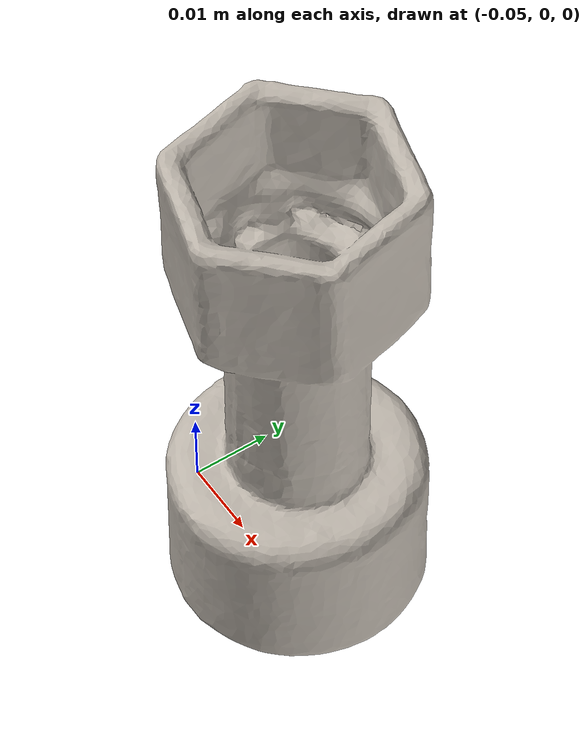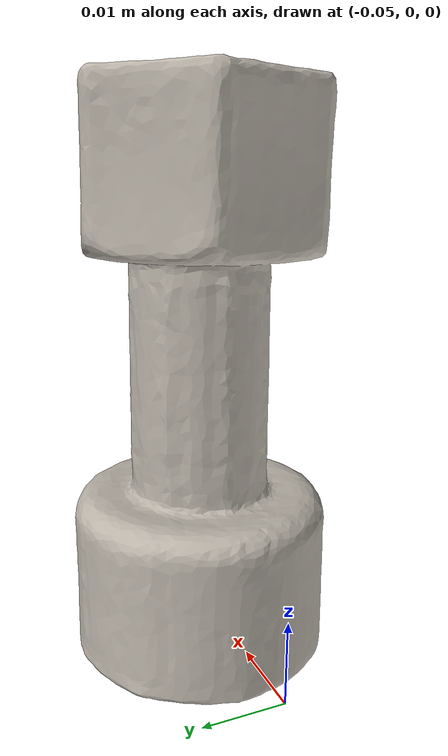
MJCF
<mujoco model="airplane_c">
  <compiler angle="radian" meshdir="assets" texturedir="assets"/>
    <default>
        <default class="ycb_col">
            <geom contype="1" conaffinity="1" group="3" rgba=".4 .5 .6 1"/>
        </default>
        <default class="ycb_viz">
            <geom contype="0" conaffinity="0" type="mesh" mass="0"/>
        </default>
    </default>
  <asset>
    <texture type="2d" name="c_toy_airplane_tex" file="texture_map.png"/>
    <material name="c_toy_airplane_mat" texture="c_toy_airplane_tex" specular="0.5" shininess="0.5"/>
    <mesh file="textured.obj" name="c_toy_airplane"/>
    <mesh file="textured_collision_0.obj" name="c_toy_airplane_collision_0"/>
    <mesh file="textured_collision_1.obj" name="c_toy_airplane_collision_1"/>
    <mesh file="textured_collision_2.obj" name="c_toy_airplane_collision_2"/>
    <mesh file="textured_collision_3.obj" name="c_toy_airplane_collision_3"/>
    <mesh file="textured_collision_4.obj" name="c_toy_airplane_collision_4"/>
    <mesh file="textured_collision_5.obj" name="c_toy_airplane_collision_5"/>
    <mesh file="textured_collision_6.obj" name="c_toy_airplane_collision_6"/>
    <mesh file="textured_collision_7.obj" name="c_toy_airplane_collision_7"/>
    <mesh file="textured_collision_8.obj" name="c_toy_airplane_collision_8"/>
    <mesh file="textured_collision_9.obj" name="c_toy_airplane_collision_9"/>
    <mesh file="textured_collision_10.obj" name="c_toy_airplane_collision_10"/>
    <mesh file="textured_collision_11.obj" name="c_toy_airplane_collision_11"/>
    <mesh file="textured_collision_12.obj" name="c_toy_airplane_collision_12"/>
    <mesh file="textured_collision_13.obj" name="c_toy_airplane_collision_13"/>
    <mesh file="textured_collision_14.obj" name="c_toy_airplane_collision_14"/>
    <mesh file="textured_collision_15.obj" name="c_toy_airplane_collision_15"/>
    <mesh file="textured_collision_16.obj" name="c_toy_airplane_collision_16"/>
    <mesh file="textured_collision_17.obj" name="c_toy_airplane_collision_17"/>
    <mesh file="textured_collision_18.obj" name="c_toy_airplane_collision_18"/>
    <mesh file="textured_collision_19.obj" name="c_toy_airplane_collision_19"/>
    <mesh file="textured_collision_20.obj" name="c_toy_airplane_collision_20"/>
    <mesh file="textured_collision_21.obj" name="c_toy_airplane_collision_21"/>
    <mesh file="textured_collision_22.obj" name="c_toy_airplane_collision_22"/>
    <mesh file="textured_collision_23.obj" name="c_toy_airplane_collision_23"/>
    <mesh file="textured_collision_24.obj" name="c_toy_airplane_collision_24"/>
    <mesh file="textured_collision_25.obj" name="c_toy_airplane_collision_25"/>
    <mesh file="textured_collision_26.obj" name="c_toy_airplane_collision_26"/>
    <mesh file="textured_collision_27.obj" name="c_toy_airplane_collision_27"/>
    <mesh file="textured_collision_28.obj" name="c_toy_airplane_collision_28"/>
    <mesh file="textured_collision_29.obj" name="c_toy_airplane_collision_29"/>
    <mesh file="textured_collision_30.obj" name="c_toy_airplane_collision_30"/>
    <mesh file="textured_collision_31.obj" name="c_toy_airplane_collision_31"/>
  </asset>
  <worldbody>
      <geom material="c_toy_airplane_mat" mesh="c_toy_airplane" class="ycb_viz"/>
      <geom mesh="c_toy_airplane_collision_0" class="ycb_col" conaffinity="1" condim="4" friction="0.1 0.1 0.1" mass="0.004360130045524942" rgba="1 1 1 1" solimp="0.99 0.99 0.01" solref=".001 0.1" type="mesh" group="3"/>
      <geom mesh="c_toy_airplane_collision_1" class="ycb_col" conaffinity="1" condim="4" friction="0.1 0.1 0.1" mass="0.00602465290006309" rgba="1 1 1 1" solimp="0.99 0.99 0.01" solref=".001 0.1" type="mesh" group="3"/>
      <geom mesh="c_toy_airplane_collision_2" class="ycb_col" conaffinity="1" condim="4" friction="0.1 0.1 0.1" mass="0.0023449898444165827" rgba="1 1 1 1" solimp="0.99 0.99 0.01" solref=".001 0.1" type="mesh" group="3"/>
      <geom mesh="c_toy_airplane_collision_3" class="ycb_col" conaffinity="1" condim="4" friction="0.1 0.1 0.1" mass="0.0018310978793873737" rgba="1 1 1 1" solimp="0.99 0.99 0.01" solref=".001 0.1" type="mesh" group="3"/>
      <geom mesh="c_toy_airplane_collision_4" class="ycb_col" conaffinity="1" condim="4" friction="0.1 0.1 0.1" mass="0.0016024349527444472" rgba="1 1 1 1" solimp="0.99 0.99 0.01" solref=".001 0.1" type="mesh" group="3"/>
      <geom mesh="c_toy_airplane_collision_5" class="ycb_col" conaffinity="1" condim="4" friction="0.1 0.1 0.1" mass="0.0032852488987648518" rgba="1 1 1 1" solimp="0.99 0.99 0.01" solref=".001 0.1" type="mesh" group="3"/>
      <geom mesh="c_toy_airplane_collision_6" class="ycb_col" conaffinity="1" condim="4" friction="0.1 0.1 0.1" mass="0.0015924790868842961" rgba="1 1 1 1" solimp="0.99 0.99 0.01" solref=".001 0.1" type="mesh" group="3"/>
      <geom mesh="c_toy_airplane_collision_7" class="ycb_col" conaffinity="1" condim="4" friction="0.1 0.1 0.1" mass="0.002565413609045229" rgba="1 1 1 1" solimp="0.99 0.99 0.01" solref=".001 0.1" type="mesh" group="3"/>
      <geom mesh="c_toy_airplane_collision_8" class="ycb_col" conaffinity="1" condim="4" friction="0.1 0.1 0.1" mass="0.004425329711285817" rgba="1 1 1 1" solimp="0.99 0.99 0.01" solref=".001 0.1" type="mesh" group="3"/>
      <geom mesh="c_toy_airplane_collision_9" class="ycb_col" conaffinity="1" condim="4" friction="0.1 0.1 0.1" mass="0.002078563215990939" rgba="1 1 1 1" solimp="0.99 0.99 0.01" solref=".001 0.1" type="mesh" group="3"/>
      <geom mesh="c_toy_airplane_collision_10" class="ycb_col" conaffinity="1" condim="4" friction="0.1 0.1 0.1" mass="0.0017902808421312222" rgba="1 1 1 1" solimp="0.99 0.99 0.01" solref=".001 0.1" type="mesh" group="3"/>
      <geom mesh="c_toy_airplane_collision_11" class="ycb_col" conaffinity="1" condim="4" friction="0.1 0.1 0.1" mass="0.001637225975675892" rgba="1 1 1 1" solimp="0.99 0.99 0.01" solref=".001 0.1" type="mesh" group="3"/>
      <geom mesh="c_toy_airplane_collision_12" class="ycb_col" conaffinity="1" condim="4" friction="0.1 0.1 0.1" mass="0.0011995665774515597" rgba="1 1 1 1" solimp="0.99 0.99 0.01" solref=".001 0.1" type="mesh" group="3"/>
      <geom mesh="c_toy_airplane_collision_13" class="ycb_col" conaffinity="1" condim="4" friction="0.1 0.1 0.1" mass="0.0004906174888028363" rgba="1 1 1 1" solimp="0.99 0.99 0.01" solref=".001 0.1" type="mesh" group="3"/>
      <geom mesh="c_toy_airplane_collision_14" class="ycb_col" conaffinity="1" condim="4" friction="0.1 0.1 0.1" mass="0.0025512726037889904" rgba="1 1 1 1" solimp="0.99 0.99 0.01" solref=".001 0.1" type="mesh" group="3"/>
      <geom mesh="c_toy_airplane_collision_15" class="ycb_col" conaffinity="1" condim="4" friction="0.1 0.1 0.1" mass="0.0005056538600777103" rgba="1 1 1 1" solimp="0.99 0.99 0.01" solref=".001 0.1" type="mesh" group="3"/>
      <geom mesh="c_toy_airplane_collision_16" class="ycb_col" conaffinity="1" condim="4" friction="0.1 0.1 0.1" mass="0.0005495603453991493" rgba="1 1 1 1" solimp="0.99 0.99 0.01" solref=".001 0.1" type="mesh" group="3"/>
      <geom mesh="c_toy_airplane_collision_17" class="ycb_col" conaffinity="1" condim="4" friction="0.1 0.1 0.1" mass="0.0002654065621315671" rgba="1 1 1 1" solimp="0.99 0.99 0.01" solref=".001 0.1" type="mesh" group="3"/>
      <geom mesh="c_toy_airplane_collision_18" class="ycb_col" conaffinity="1" condim="4" friction="0.1 0.1 0.1" mass="0.00037454661256185293" rgba="1 1 1 1" solimp="0.99 0.99 0.01" solref=".001 0.1" type="mesh" group="3"/>
      <geom mesh="c_toy_airplane_collision_19" class="ycb_col" conaffinity="1" condim="4" friction="0.1 0.1 0.1" mass="0.001431429043682421" rgba="1 1 1 1" solimp="0.99 0.99 0.01" solref=".001 0.1" type="mesh" group="3"/>
      <geom mesh="c_toy_airplane_collision_20" class="ycb_col" conaffinity="1" condim="4" friction="0.1 0.1 0.1" mass="0.0009102648771895374" rgba="1 1 1 1" solimp="0.99 0.99 0.01" solref=".001 0.1" type="mesh" group="3"/>
      <geom mesh="c_toy_airplane_collision_21" class="ycb_col" conaffinity="1" condim="4" friction="0.1 0.1 0.1" mass="0.0009990321856815736" rgba="1 1 1 1" solimp="0.99 0.99 0.01" solref=".001 0.1" type="mesh" group="3"/>
      <geom mesh="c_toy_airplane_collision_22" class="ycb_col" conaffinity="1" condim="4" friction="0.1 0.1 0.1" mass="0.0013551740856909186" rgba="1 1 1 1" solimp="0.99 0.99 0.01" solref=".001 0.1" type="mesh" group="3"/>
      <geom mesh="c_toy_airplane_collision_23" class="ycb_col" conaffinity="1" condim="4" friction="0.1 0.1 0.1" mass="0.0012248348366435185" rgba="1 1 1 1" solimp="0.99 0.99 0.01" solref=".001 0.1" type="mesh" group="3"/>
      <geom mesh="c_toy_airplane_collision_24" class="ycb_col" conaffinity="1" condim="4" friction="0.1 0.1 0.1" mass="0.00024643231357361183" rgba="1 1 1 1" solimp="0.99 0.99 0.01" solref=".001 0.1" type="mesh" group="3"/>
      <geom mesh="c_toy_airplane_collision_25" class="ycb_col" conaffinity="1" condim="4" friction="0.1 0.1 0.1" mass="0.00065287895893497" rgba="1 1 1 1" solimp="0.99 0.99 0.01" solref=".001 0.1" type="mesh" group="3"/>
      <geom mesh="c_toy_airplane_collision_26" class="ycb_col" conaffinity="1" condim="4" friction="0.1 0.1 0.1" mass="0.0008564407404631526" rgba="1 1 1 1" solimp="0.99 0.99 0.01" solref=".001 0.1" type="mesh" group="3"/>
      <geom mesh="c_toy_airplane_collision_27" class="ycb_col" conaffinity="1" condim="4" friction="0.1 0.1 0.1" mass="0.0003891257027089628" rgba="1 1 1 1" solimp="0.99 0.99 0.01" solref=".001 0.1" type="mesh" group="3"/>
      <geom mesh="c_toy_airplane_collision_28" class="ycb_col" conaffinity="1" condim="4" friction="0.1 0.1 0.1" mass="0.0005364842291988995" rgba="1 1 1 1" solimp="0.99 0.99 0.01" solref=".001 0.1" type="mesh" group="3"/>
      <geom mesh="c_toy_airplane_collision_29" class="ycb_col" conaffinity="1" condim="4" friction="0.1 0.1 0.1" mass="0.00025936829403399247" rgba="1 1 1 1" solimp="0.99 0.99 0.01" solref=".001 0.1" type="mesh" group="3"/>
      <geom mesh="c_toy_airplane_collision_30" class="ycb_col" conaffinity="1" condim="4" friction="0.1 0.1 0.1" mass="0.000676787602172142" rgba="1 1 1 1" solimp="0.99 0.99 0.01" solref=".001 0.1" type="mesh" group="3"/>
      <geom mesh="c_toy_airplane_collision_31" class="ycb_col" conaffinity="1" condim="4" friction="0.1 0.1 0.1" mass="0.0009872761178979486" rgba="1 1 1 1" solimp="0.99 0.99 0.01" solref=".001 0.1" type="mesh" group="3"/>
  </worldbody>
</mujoco>
